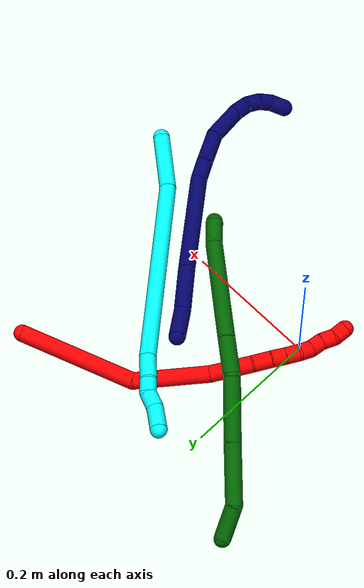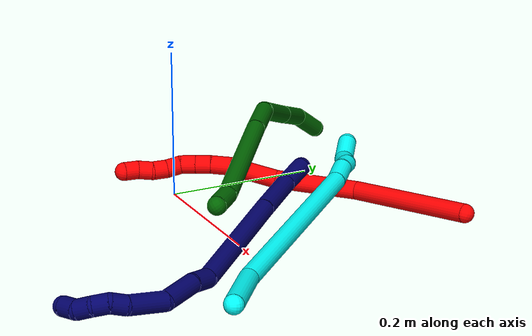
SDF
<sdf version="1.7">
 <world name="default">
  <model name="2">
   <static>0</static>
   <link name="2">
    <collision name="collision-cylinder-e_1_1_4">
     <pose>-0.068611 -0.054743 -0.003369 1.63226 -0.896426 -0.945379</pose>
     <geometry><cylinder><radius>0.0125</radius><length>0.175677</length></cylinder></geometry>
     <surface>
      <friction><ode><mu>1.16</mu><mu2>1.16</mu2><slip1>0</slip1><slip2>0</slip2></ode></friction>
      <contact><ode><kp>1e+06</kp><kd>1</kd><max_vel>0</max_vel><min_depth>0.001</min_depth></ode></contact>
     </surface>
    </collision>
    <visual name="visual-cylinder-e_1_1_4">
     <pose>-0.068611 -0.054743 -0.003369 1.63226 -0.896426 -0.945379</pose>
     <geometry><cylinder><radius>0.0125</radius><length>0.175677</length></cylinder></geometry>
     <material><ambient>1 0 0 1</ambient></material>
    </visual>
    <collision name="collision-cylinder-e_2_4_5">
     <pose>-0.158931 -0.160828 -0.012524 1.68302 -0.39779 -0.443677</pose>
     <geometry><cylinder><radius>0.0125</radius><length>0.112085</length></cylinder></geometry>
     <surface>
      <friction><ode><mu>1.16</mu><mu2>1.16</mu2><slip1>0</slip1><slip2>0</slip2></ode></friction>
      <contact><ode><kp>1e+06</kp><kd>1</kd><max_vel>0</max_vel><min_depth>0.001</min_depth></ode></contact>
     </surface>
    </collision>
    <visual name="visual-cylinder-e_2_4_5">
     <pose>-0.158931 -0.160828 -0.012524 1.68302 -0.39779 -0.443677</pose>
     <geometry><cylinder><radius>0.0125</radius><length>0.112085</length></cylinder></geometry>
     <material><ambient>1 0 0 1</ambient></material>
    </visual>
    <collision name="collision-cylinder-e_3_5_6">
     <pose>-0.189025 -0.243135 -0.017149 1.53334 -0.264241 -0.254631</pose>
     <geometry><cylinder><radius>0.0125</radius><length>0.064202</length></cylinder></geometry>
     <surface>
      <friction><ode><mu>1.16</mu><mu2>1.16</mu2><slip1>0</slip1><slip2>0</slip2></ode></friction>
      <contact><ode><kp>1e+06</kp><kd>1</kd><max_vel>0</max_vel><min_depth>0.001</min_depth></ode></contact>
     </surface>
    </collision>
    <visual name="visual-cylinder-e_3_5_6">
     <pose>-0.189025 -0.243135 -0.017149 1.53334 -0.264241 -0.254631</pose>
     <geometry><cylinder><radius>0.0125</radius><length>0.064202</length></cylinder></geometry>
     <material><ambient>1 0 0 1</ambient></material>
    </visual>
    <collision name="collision-cylinder-e_4_6_7">
     <pose>-0.200538 -0.287116 -0.018028 1.72622 -0.2332 -0.272135</pose>
     <geometry><cylinder><radius>0.0125</radius><length>0.027082</length></cylinder></geometry>
     <surface>
      <friction><ode><mu>1.16</mu><mu2>1.16</mu2><slip1>0</slip1><slip2>0</slip2></ode></friction>
      <contact><ode><kp>1e+06</kp><kd>1</kd><max_vel>0</max_vel><min_depth>0.001</min_depth></ode></contact>
     </surface>
    </collision>
    <visual name="visual-cylinder-e_4_6_7">
     <pose>-0.200538 -0.287116 -0.018028 1.72622 -0.2332 -0.272135</pose>
     <geometry><cylinder><radius>0.0125</radius><length>0.027082</length></cylinder></geometry>
     <material><ambient>1 0 0 1</ambient></material>
    </visual>
    <collision name="collision-cylinder-e_5_7_8">
     <pose>-0.206321 -0.309823 -0.022481 1.81484 -0.259647 -0.331051</pose>
     <geometry><cylinder><radius>0.0125</radius><length>0.020668</length></cylinder></geometry>
     <surface>
      <friction><ode><mu>1.16</mu><mu2>1.16</mu2><slip1>0</slip1><slip2>0</slip2></ode></friction>
      <contact><ode><kp>1e+06</kp><kd>1</kd><max_vel>0</max_vel><min_depth>0.001</min_depth></ode></contact>
     </surface>
    </collision>
    <visual name="visual-cylinder-e_5_7_8">
     <pose>-0.206321 -0.309823 -0.022481 1.81484 -0.259647 -0.331051</pose>
     <geometry><cylinder><radius>0.0125</radius><length>0.020668</length></cylinder></geometry>
     <material><ambient>1 0 0 1</ambient></material>
    </visual>
    <collision name="collision-cylinder-e_6_8_9">
     <pose>-0.211244 -0.329024 -0.027361 1.82463 -0.227109 -0.292707</pose>
     <geometry><cylinder><radius>0.0125</radius><length>0.020166</length></cylinder></geometry>
     <surface>
      <friction><ode><mu>1.16</mu><mu2>1.16</mu2><slip1>0</slip1><slip2>0</slip2></ode></friction>
      <contact><ode><kp>1e+06</kp><kd>1</kd><max_vel>0</max_vel><min_depth>0.001</min_depth></ode></contact>
     </surface>
    </collision>
    <visual name="visual-cylinder-e_6_8_9">
     <pose>-0.211244 -0.329024 -0.027361 1.82463 -0.227109 -0.292707</pose>
     <geometry><cylinder><radius>0.0125</radius><length>0.020166</length></cylinder></geometry>
     <material><ambient>1 0 0 1</ambient></material>
    </visual>
    <collision name="collision-cylinder-e_7_9_10">
     <pose>-0.214813 -0.347104 -0.034895 2.10474 -0.129682 -0.226668</pose>
     <geometry><cylinder><radius>0.0125</radius><length>0.020082</length></cylinder></geometry>
     <surface>
      <friction><ode><mu>1.16</mu><mu2>1.16</mu2><slip1>0</slip1><slip2>0</slip2></ode></friction>
      <contact><ode><kp>1e+06</kp><kd>1</kd><max_vel>0</max_vel><min_depth>0.001</min_depth></ode></contact>
     </surface>
    </collision>
    <visual name="visual-cylinder-e_7_9_10">
     <pose>-0.214813 -0.347104 -0.034895 2.10474 -0.129682 -0.226668</pose>
     <geometry><cylinder><radius>0.0125</radius><length>0.020082</length></cylinder></geometry>
     <material><ambient>1 0 0 1</ambient></material>
    </visual>
    <collision name="collision-cylinder-e_8_10_11">
     <pose>-0.214812 -0.364962 -0.043444 1.92944 0.130285 0.187689</pose>
     <geometry><cylinder><radius>0.0125</radius><length>0.020005</length></cylinder></geometry>
     <surface>
      <friction><ode><mu>1.16</mu><mu2>1.16</mu2><slip1>0</slip1><slip2>0</slip2></ode></friction>
      <contact><ode><kp>1e+06</kp><kd>1</kd><max_vel>0</max_vel><min_depth>0.001</min_depth></ode></contact>
     </surface>
    </collision>
    <visual name="visual-cylinder-e_8_10_11">
     <pose>-0.214812 -0.364962 -0.043444 1.92944 0.130285 0.187689</pose>
     <geometry><cylinder><radius>0.0125</radius><length>0.020005</length></cylinder></geometry>
     <material><ambient>1 0 0 1</ambient></material>
    </visual>
    <collision name="collision-cylinder-e_9_11_12">
     <pose>-0.214966 -0.384011 -0.048605 1.74116 -0.145657 -0.172729</pose>
     <geometry><cylinder><radius>0.0125</radius><length>0.020024</length></cylinder></geometry>
     <surface>
      <friction><ode><mu>1.16</mu><mu2>1.16</mu2><slip1>0</slip1><slip2>0</slip2></ode></friction>
      <contact><ode><kp>1e+06</kp><kd>1</kd><max_vel>0</max_vel><min_depth>0.001</min_depth></ode></contact>
     </surface>
    </collision>
    <visual name="visual-cylinder-e_9_11_12">
     <pose>-0.214966 -0.384011 -0.048605 1.74116 -0.145657 -0.172729</pose>
     <geometry><cylinder><radius>0.0125</radius><length>0.020024</length></cylinder></geometry>
     <material><ambient>1 0 0 1</ambient></material>
    </visual>
    <collision name="collision-cylinder-e_10_12_2">
     <pose>-0.21459 -0.403054 -0.053543 1.90857 0.183802 0.258647</pose>
     <geometry><cylinder><radius>0.0125</radius><length>0.020009</length></cylinder></geometry>
     <surface>
      <friction><ode><mu>1.16</mu><mu2>1.16</mu2><slip1>0</slip1><slip2>0</slip2></ode></friction>
      <contact><ode><kp>1e+06</kp><kd>1</kd><max_vel>0</max_vel><min_depth>0.001</min_depth></ode></contact>
     </surface>
    </collision>
    <visual name="visual-cylinder-e_10_12_2">
     <pose>-0.21459 -0.403054 -0.053543 1.90857 0.183802 0.258647</pose>
     <geometry><cylinder><radius>0.0125</radius><length>0.020009</length></cylinder></geometry>
     <material><ambient>1 0 0 1</ambient></material>
    </visual>
    <collision name="collision-sphere-2">
     <pose>-0.212762 -0.412334 -0.056803 0 -0 0</pose>
     <geometry><sphere><radius>0.0125</radius></sphere></geometry>
     <surface>
      <friction><ode><mu>1.16</mu><mu2>1.16</mu2><slip1>0</slip1><slip2>0</slip2></ode></friction>
      <contact><ode><kp>1e+06</kp><kd>1</kd><max_vel>0</max_vel><min_depth>0.001</min_depth></ode></contact>
     </surface>
    </collision>
    <visual name="visual-sphere-2">
     <pose>-0.212762 -0.412334 -0.056803 0 -0 0</pose>
     <geometry><sphere><radius>0.0125</radius></sphere></geometry>
     <material><ambient>1 0 0 1</ambient></material>
    </visual>
    <collision name="collision-sphere-12">
     <pose>-0.216419 -0.393773 -0.050284 0 -0 0</pose>
     <geometry><sphere><radius>0.0125</radius></sphere></geometry>
     <surface>
      <friction><ode><mu>1.16</mu><mu2>1.16</mu2><slip1>0</slip1><slip2>0</slip2></ode></friction>
      <contact><ode><kp>1e+06</kp><kd>1</kd><max_vel>0</max_vel><min_depth>0.001</min_depth></ode></contact>
     </surface>
    </collision>
    <visual name="visual-sphere-12">
     <pose>-0.216419 -0.393773 -0.050284 0 -0 0</pose>
     <geometry><sphere><radius>0.0125</radius></sphere></geometry>
     <material><ambient>1 0 0 1</ambient></material>
    </visual>
    <collision name="collision-sphere-11">
     <pose>-0.213513 -0.374248 -0.046925 0 -0 0</pose>
     <geometry><sphere><radius>0.0125</radius></sphere></geometry>
     <surface>
      <friction><ode><mu>1.16</mu><mu2>1.16</mu2><slip1>0</slip1><slip2>0</slip2></ode></friction>
      <contact><ode><kp>1e+06</kp><kd>1</kd><max_vel>0</max_vel><min_depth>0.001</min_depth></ode></contact>
     </surface>
    </collision>
    <visual name="visual-sphere-11">
     <pose>-0.213513 -0.374248 -0.046925 0 -0 0</pose>
     <geometry><sphere><radius>0.0125</radius></sphere></geometry>
     <material><ambient>1 0 0 1</ambient></material>
    </visual>
    <collision name="collision-sphere-10">
     <pose>-0.216112 -0.355675 -0.039963 0 -0 0</pose>
     <geometry><sphere><radius>0.0125</radius></sphere></geometry>
     <surface>
      <friction><ode><mu>1.16</mu><mu2>1.16</mu2><slip1>0</slip1><slip2>0</slip2></ode></friction>
      <contact><ode><kp>1e+06</kp><kd>1</kd><max_vel>0</max_vel><min_depth>0.001</min_depth></ode></contact>
     </surface>
    </collision>
    <visual name="visual-sphere-10">
     <pose>-0.216112 -0.355675 -0.039963 0 -0 0</pose>
     <geometry><sphere><radius>0.0125</radius></sphere></geometry>
     <material><ambient>1 0 0 1</ambient></material>
    </visual>
    <collision name="collision-sphere-9">
     <pose>-0.213515 -0.338534 -0.029828 0 -0 0</pose>
     <geometry><sphere><radius>0.0125</radius></sphere></geometry>
     <surface>
      <friction><ode><mu>1.16</mu><mu2>1.16</mu2><slip1>0</slip1><slip2>0</slip2></ode></friction>
      <contact><ode><kp>1e+06</kp><kd>1</kd><max_vel>0</max_vel><min_depth>0.001</min_depth></ode></contact>
     </surface>
    </collision>
    <visual name="visual-sphere-9">
     <pose>-0.213515 -0.338534 -0.029828 0 -0 0</pose>
     <geometry><sphere><radius>0.0125</radius></sphere></geometry>
     <material><ambient>1 0 0 1</ambient></material>
    </visual>
    <collision name="collision-sphere-4">
     <pose>-0.137221 -0.109486 -0.006738 0 -0 0</pose>
     <geometry><sphere><radius>0.0125</radius></sphere></geometry>
     <surface>
      <friction><ode><mu>1.16</mu><mu2>1.16</mu2><slip1>0</slip1><slip2>0</slip2></ode></friction>
      <contact><ode><kp>1e+06</kp><kd>1</kd><max_vel>0</max_vel><min_depth>0.001</min_depth></ode></contact>
     </surface>
    </collision>
    <visual name="visual-sphere-4">
     <pose>-0.137221 -0.109486 -0.006738 0 -0 0</pose>
     <geometry><sphere><radius>0.0125</radius></sphere></geometry>
     <material><ambient>1 0 0 1</ambient></material>
    </visual>
    <collision name="collision-sphere-1">
     <geometry><sphere><radius>0.0125</radius></sphere></geometry>
     <surface>
      <friction><ode><mu>1.16</mu><mu2>1.16</mu2><slip1>0</slip1><slip2>0</slip2></ode></friction>
      <contact><ode><kp>1e+06</kp><kd>1</kd><max_vel>0</max_vel><min_depth>0.001</min_depth></ode></contact>
     </surface>
    </collision>
    <visual name="visual-sphere-1">
     <geometry><sphere><radius>0.0125</radius></sphere></geometry>
     <material><ambient>1 0 0 1</ambient></material>
    </visual>
    <collision name="collision-sphere-8">
     <pose>-0.208974 -0.319515 -0.024894 0 -0 0</pose>
     <geometry><sphere><radius>0.0125</radius></sphere></geometry>
     <surface>
      <friction><ode><mu>1.16</mu><mu2>1.16</mu2><slip1>0</slip1><slip2>0</slip2></ode></friction>
      <contact><ode><kp>1e+06</kp><kd>1</kd><max_vel>0</max_vel><min_depth>0.001</min_depth></ode></contact>
     </surface>
    </collision>
    <visual name="visual-sphere-8">
     <pose>-0.208974 -0.319515 -0.024894 0 -0 0</pose>
     <geometry><sphere><radius>0.0125</radius></sphere></geometry>
     <material><ambient>1 0 0 1</ambient></material>
    </visual>
    <collision name="collision-sphere-5">
     <pose>-0.180641 -0.21217 -0.01831 0 -0 0</pose>
     <geometry><sphere><radius>0.0125</radius></sphere></geometry>
     <surface>
      <friction><ode><mu>1.16</mu><mu2>1.16</mu2><slip1>0</slip1><slip2>0</slip2></ode></friction>
      <contact><ode><kp>1e+06</kp><kd>1</kd><max_vel>0</max_vel><min_depth>0.001</min_depth></ode></contact>
     </surface>
    </collision>
    <visual name="visual-sphere-5">
     <pose>-0.180641 -0.21217 -0.01831 0 -0 0</pose>
     <geometry><sphere><radius>0.0125</radius></sphere></geometry>
     <material><ambient>1 0 0 1</ambient></material>
    </visual>
    <collision name="collision-sphere-6">
     <pose>-0.197409 -0.2741 -0.015989 0 -0 0</pose>
     <geometry><sphere><radius>0.0125</radius></sphere></geometry>
     <surface>
      <friction><ode><mu>1.16</mu><mu2>1.16</mu2><slip1>0</slip1><slip2>0</slip2></ode></friction>
      <contact><ode><kp>1e+06</kp><kd>1</kd><max_vel>0</max_vel><min_depth>0.001</min_depth></ode></contact>
     </surface>
    </collision>
    <visual name="visual-sphere-6">
     <pose>-0.197409 -0.2741 -0.015989 0 -0 0</pose>
     <geometry><sphere><radius>0.0125</radius></sphere></geometry>
     <material><ambient>1 0 0 1</ambient></material>
    </visual>
    <collision name="collision-sphere-7">
     <pose>-0.203668 -0.300131 -0.020068 0 -0 0</pose>
     <geometry><sphere><radius>0.0125</radius></sphere></geometry>
     <surface>
      <friction><ode><mu>1.16</mu><mu2>1.16</mu2><slip1>0</slip1><slip2>0</slip2></ode></friction>
      <contact><ode><kp>1e+06</kp><kd>1</kd><max_vel>0</max_vel><min_depth>0.001</min_depth></ode></contact>
     </surface>
    </collision>
    <visual name="visual-sphere-7">
     <pose>-0.203668 -0.300131 -0.020068 0 -0 0</pose>
     <geometry><sphere><radius>0.0125</radius></sphere></geometry>
     <material><ambient>1 0 0 1</ambient></material>
    </visual>
    <inertial>
     <pose>-0.146335 -0.188186 -0.016431 0 -0 0</pose>
     <mass>0.5</mass>
     <inertia><ixx>-2e-06</ixx><ixy>0</ixy><ixz>0</ixz><iyy>-3.9e-05</iyy><iyz>0</iyz><izz>0.000841</izz></inertia>
    </inertial>
   </link>
   <pose>0.29064 0.27745 0.024914 -0.299995 -0.275425 -0.270124</pose>
  </model>
  <model name="3">
   <static>0</static>
   <link name="3">
    <collision name="collision-cylinder-e_1_1_4">
     <pose>-0.028175 0.011627 -0.029843 -2.77008 -0.721492 2.2173</pose>
     <geometry><cylinder><radius>0.0125</radius><length>0.085314</length></cylinder></geometry>
     <surface>
      <friction><ode><mu>1.16</mu><mu2>1.16</mu2><slip1>0</slip1><slip2>0</slip2></ode></friction>
      <contact><ode><kp>1e+06</kp><kd>1</kd><max_vel>0</max_vel><min_depth>0.001</min_depth></ode></contact>
     </surface>
    </collision>
    <visual name="visual-cylinder-e_1_1_4">
     <pose>-0.028175 0.011627 -0.029843 -2.77008 -0.721492 2.2173</pose>
     <geometry><cylinder><radius>0.0125</radius><length>0.085314</length></cylinder></geometry>
     <material><ambient>0.003922 1 0.996078 1</ambient></material>
    </visual>
    <collision name="collision-cylinder-e_2_4_5">
     <pose>-0.123216 0.072585 -0.179647 -2.75144 -0.475977 1.77455</pose>
     <geometry><cylinder><radius>0.0125</radius><length>0.291859</length></cylinder></geometry>
     <surface>
      <friction><ode><mu>1.16</mu><mu2>1.16</mu2><slip1>0</slip1><slip2>0</slip2></ode></friction>
      <contact><ode><kp>1e+06</kp><kd>1</kd><max_vel>0</max_vel><min_depth>0.001</min_depth></ode></contact>
     </surface>
    </collision>
    <visual name="visual-cylinder-e_2_4_5">
     <pose>-0.123216 0.072585 -0.179647 -2.75144 -0.475977 1.77455</pose>
     <geometry><cylinder><radius>0.0125</radius><length>0.291859</length></cylinder></geometry>
     <material><ambient>0.003922 1 0.996078 1</ambient></material>
    </visual>
    <collision name="collision-cylinder-e_3_5_6">
     <pose>-0.199999 0.130059 -0.313245 -2.6033 -0.558173 1.60894</pose>
     <geometry><cylinder><radius>0.0125</radius><length>0.037448</length></cylinder></geometry>
     <surface>
      <friction><ode><mu>1.16</mu><mu2>1.16</mu2><slip1>0</slip1><slip2>0</slip2></ode></friction>
      <contact><ode><kp>1e+06</kp><kd>1</kd><max_vel>0</max_vel><min_depth>0.001</min_depth></ode></contact>
     </surface>
    </collision>
    <visual name="visual-cylinder-e_3_5_6">
     <pose>-0.199999 0.130059 -0.313245 -2.6033 -0.558173 1.60894</pose>
     <geometry><cylinder><radius>0.0125</radius><length>0.037448</length></cylinder></geometry>
     <material><ambient>0.003922 1 0.996078 1</ambient></material>
    </visual>
    <collision name="collision-cylinder-e_4_6_7">
     <pose>-0.215729 0.1405 -0.335103 -2.86888 -0.597769 2.30369</pose>
     <geometry><cylinder><radius>0.0125</radius><length>0.020657</length></cylinder></geometry>
     <surface>
      <friction><ode><mu>1.16</mu><mu2>1.16</mu2><slip1>0</slip1><slip2>0</slip2></ode></friction>
      <contact><ode><kp>1e+06</kp><kd>1</kd><max_vel>0</max_vel><min_depth>0.001</min_depth></ode></contact>
     </surface>
    </collision>
    <visual name="visual-cylinder-e_4_6_7">
     <pose>-0.215729 0.1405 -0.335103 -2.86888 -0.597769 2.30369</pose>
     <geometry><cylinder><radius>0.0125</radius><length>0.020657</length></cylinder></geometry>
     <material><ambient>0.003922 1 0.996078 1</ambient></material>
    </visual>
    <collision name="collision-cylinder-e_5_7_8">
     <pose>-0.231936 0.146064 -0.348804 -2.60436 -1.02047 2.22739</pose>
     <geometry><cylinder><radius>0.0125</radius><length>0.024391</length></cylinder></geometry>
     <surface>
      <friction><ode><mu>1.16</mu><mu2>1.16</mu2><slip1>0</slip1><slip2>0</slip2></ode></friction>
      <contact><ode><kp>1e+06</kp><kd>1</kd><max_vel>0</max_vel><min_depth>0.001</min_depth></ode></contact>
     </surface>
    </collision>
    <visual name="visual-cylinder-e_5_7_8">
     <pose>-0.231936 0.146064 -0.348804 -2.60436 -1.02047 2.22739</pose>
     <geometry><cylinder><radius>0.0125</radius><length>0.024391</length></cylinder></geometry>
     <material><ambient>0.003922 1 0.996078 1</ambient></material>
    </visual>
    <collision name="collision-cylinder-e_6_8_2">
     <pose>-0.25313 0.160718 -0.366944 -2.40897 -0.565102 1.29564</pose>
     <geometry><cylinder><radius>0.0125</radius><length>0.040331</length></cylinder></geometry>
     <surface>
      <friction><ode><mu>1.16</mu><mu2>1.16</mu2><slip1>0</slip1><slip2>0</slip2></ode></friction>
      <contact><ode><kp>1e+06</kp><kd>1</kd><max_vel>0</max_vel><min_depth>0.001</min_depth></ode></contact>
     </surface>
    </collision>
    <visual name="visual-cylinder-e_6_8_2">
     <pose>-0.25313 0.160718 -0.366944 -2.40897 -0.565102 1.29564</pose>
     <geometry><cylinder><radius>0.0125</radius><length>0.040331</length></cylinder></geometry>
     <material><ambient>0.003922 1 0.996078 1</ambient></material>
    </visual>
    <collision name="collision-sphere-2">
     <pose>-0.263929 0.172109 -0.379605 0 -0 0</pose>
     <geometry><sphere><radius>0.0125</radius></sphere></geometry>
     <surface>
      <friction><ode><mu>1.16</mu><mu2>1.16</mu2><slip1>0</slip1><slip2>0</slip2></ode></friction>
      <contact><ode><kp>1e+06</kp><kd>1</kd><max_vel>0</max_vel><min_depth>0.001</min_depth></ode></contact>
     </surface>
    </collision>
    <visual name="visual-sphere-2">
     <pose>-0.263929 0.172109 -0.379605 0 -0 0</pose>
     <geometry><sphere><radius>0.0125</radius></sphere></geometry>
     <material><ambient>0.003922 1 0.996078 1</ambient></material>
    </visual>
    <collision name="collision-sphere-4">
     <pose>-0.05635 0.023254 -0.059686 0 -0 0</pose>
     <geometry><sphere><radius>0.0125</radius></sphere></geometry>
     <surface>
      <friction><ode><mu>1.16</mu><mu2>1.16</mu2><slip1>0</slip1><slip2>0</slip2></ode></friction>
      <contact><ode><kp>1e+06</kp><kd>1</kd><max_vel>0</max_vel><min_depth>0.001</min_depth></ode></contact>
     </surface>
    </collision>
    <visual name="visual-sphere-4">
     <pose>-0.05635 0.023254 -0.059686 0 -0 0</pose>
     <geometry><sphere><radius>0.0125</radius></sphere></geometry>
     <material><ambient>0.003922 1 0.996078 1</ambient></material>
    </visual>
    <collision name="collision-sphere-1">
     <geometry><sphere><radius>0.0125</radius></sphere></geometry>
     <surface>
      <friction><ode><mu>1.16</mu><mu2>1.16</mu2><slip1>0</slip1><slip2>0</slip2></ode></friction>
      <contact><ode><kp>1e+06</kp><kd>1</kd><max_vel>0</max_vel><min_depth>0.001</min_depth></ode></contact>
     </surface>
    </collision>
    <visual name="visual-sphere-1">
     <geometry><sphere><radius>0.0125</radius></sphere></geometry>
     <material><ambient>0.003922 1 0.996078 1</ambient></material>
    </visual>
    <collision name="collision-sphere-8">
     <pose>-0.242332 0.149328 -0.354284 0 -0 0</pose>
     <geometry><sphere><radius>0.0125</radius></sphere></geometry>
     <surface>
      <friction><ode><mu>1.16</mu><mu2>1.16</mu2><slip1>0</slip1><slip2>0</slip2></ode></friction>
      <contact><ode><kp>1e+06</kp><kd>1</kd><max_vel>0</max_vel><min_depth>0.001</min_depth></ode></contact>
     </surface>
    </collision>
    <visual name="visual-sphere-8">
     <pose>-0.242332 0.149328 -0.354284 0 -0 0</pose>
     <geometry><sphere><radius>0.0125</radius></sphere></geometry>
     <material><ambient>0.003922 1 0.996078 1</ambient></material>
    </visual>
    <collision name="collision-sphere-5">
     <pose>-0.190082 0.121917 -0.299609 0 -0 0</pose>
     <geometry><sphere><radius>0.0125</radius></sphere></geometry>
     <surface>
      <friction><ode><mu>1.16</mu><mu2>1.16</mu2><slip1>0</slip1><slip2>0</slip2></ode></friction>
      <contact><ode><kp>1e+06</kp><kd>1</kd><max_vel>0</max_vel><min_depth>0.001</min_depth></ode></contact>
     </surface>
    </collision>
    <visual name="visual-sphere-5">
     <pose>-0.190082 0.121917 -0.299609 0 -0 0</pose>
     <geometry><sphere><radius>0.0125</radius></sphere></geometry>
     <material><ambient>0.003922 1 0.996078 1</ambient></material>
    </visual>
    <collision name="collision-sphere-6">
     <pose>-0.209916 0.138201 -0.326881 0 -0 0</pose>
     <geometry><sphere><radius>0.0125</radius></sphere></geometry>
     <surface>
      <friction><ode><mu>1.16</mu><mu2>1.16</mu2><slip1>0</slip1><slip2>0</slip2></ode></friction>
      <contact><ode><kp>1e+06</kp><kd>1</kd><max_vel>0</max_vel><min_depth>0.001</min_depth></ode></contact>
     </surface>
    </collision>
    <visual name="visual-sphere-6">
     <pose>-0.209916 0.138201 -0.326881 0 -0 0</pose>
     <geometry><sphere><radius>0.0125</radius></sphere></geometry>
     <material><ambient>0.003922 1 0.996078 1</ambient></material>
    </visual>
    <collision name="collision-sphere-7">
     <pose>-0.221541 0.1428 -0.343325 0 -0 0</pose>
     <geometry><sphere><radius>0.0125</radius></sphere></geometry>
     <surface>
      <friction><ode><mu>1.16</mu><mu2>1.16</mu2><slip1>0</slip1><slip2>0</slip2></ode></friction>
      <contact><ode><kp>1e+06</kp><kd>1</kd><max_vel>0</max_vel><min_depth>0.001</min_depth></ode></contact>
     </surface>
    </collision>
    <visual name="visual-sphere-7">
     <pose>-0.221541 0.1428 -0.343325 0 -0 0</pose>
     <geometry><sphere><radius>0.0125</radius></sphere></geometry>
     <material><ambient>0.003922 1 0.996078 1</ambient></material>
    </visual>
    <inertial>
     <pose>-0.132355 0.079988 -0.193875 0 -0 0</pose>
     <mass>0.5</mass>
     <inertia>
      <ixx>0.001439</ixx>
      <ixy>0</ixy>
      <ixz>0</ixz>
      <iyy>0.002665</iyy>
      <iyz>0</iyz>
      <izz>0.000244</izz>
     </inertia>
    </inertial>
   </link>
   <pose>0.387664 -0.098062 0.016519 1.48343 -0.381136 0.146487</pose>
  </model>
  <model name="6">
   <static>0</static>
   <link name="6">
    <collision name="collision-cylinder-e_1_1_4">
     <pose>-0.012023 0.013907 0.004849 -1.23533 -0.684599 0.495845</pose>
     <geometry><cylinder><radius>0.0125</radius><length>0.038024</length></cylinder></geometry>
     <surface>
      <friction><ode><mu>1.16</mu><mu2>1.16</mu2><slip1>0</slip1><slip2>0</slip2></ode></friction>
      <contact><ode><kp>1e+06</kp><kd>1</kd><max_vel>0</max_vel><min_depth>0.001</min_depth></ode></contact>
     </surface>
    </collision>
    <visual name="visual-cylinder-e_1_1_4">
     <pose>-0.012023 0.013907 0.004849 -1.23533 -0.684599 0.495845</pose>
     <geometry><cylinder><radius>0.0125</radius><length>0.038024</length></cylinder></geometry>
     <material><ambient>0 0.392157 0.003922 1</ambient></material>
    </visual>
    <collision name="collision-cylinder-e_2_4_5">
     <pose>-0.090062 0.077357 0.031796 -1.15124 -0.882946 0.595128</pose>
     <geometry><cylinder><radius>0.0125</radius><length>0.170893</length></cylinder></geometry>
     <surface>
      <friction><ode><mu>1.16</mu><mu2>1.16</mu2><slip1>0</slip1><slip2>0</slip2></ode></friction>
      <contact><ode><kp>1e+06</kp><kd>1</kd><max_vel>0</max_vel><min_depth>0.001</min_depth></ode></contact>
     </surface>
    </collision>
    <visual name="visual-cylinder-e_2_4_5">
     <pose>-0.090062 0.077357 0.031796 -1.15124 -0.882946 0.595128</pose>
     <geometry><cylinder><radius>0.0125</radius><length>0.170893</length></cylinder></geometry>
     <material><ambient>0 0.392157 0.003922 1</ambient></material>
    </visual>
    <collision name="collision-cylinder-e_3_5_6">
     <pose>-0.178151 0.14598 0.059802 -1.27054 -0.835266 0.632315</pose>
     <geometry><cylinder><radius>0.0125</radius><length>0.059533</length></cylinder></geometry>
     <surface>
      <friction><ode><mu>1.16</mu><mu2>1.16</mu2><slip1>0</slip1><slip2>0</slip2></ode></friction>
      <contact><ode><kp>1e+06</kp><kd>1</kd><max_vel>0</max_vel><min_depth>0.001</min_depth></ode></contact>
     </surface>
    </collision>
    <visual name="visual-cylinder-e_3_5_6">
     <pose>-0.178151 0.14598 0.059802 -1.27054 -0.835266 0.632315</pose>
     <geometry><cylinder><radius>0.0125</radius><length>0.059533</length></cylinder></geometry>
     <material><ambient>0 0.392157 0.003922 1</ambient></material>
    </visual>
    <collision name="collision-cylinder-e_4_6_7">
     <pose>-0.219246 0.207457 0.066484 -1.55252 -0.421719 0.4143</pose>
     <geometry><cylinder><radius>0.0125</radius><length>0.092956</length></cylinder></geometry>
     <surface>
      <friction><ode><mu>1.16</mu><mu2>1.16</mu2><slip1>0</slip1><slip2>0</slip2></ode></friction>
      <contact><ode><kp>1e+06</kp><kd>1</kd><max_vel>0</max_vel><min_depth>0.001</min_depth></ode></contact>
     </surface>
    </collision>
    <visual name="visual-cylinder-e_4_6_7">
     <pose>-0.219246 0.207457 0.066484 -1.55252 -0.421719 0.4143</pose>
     <geometry><cylinder><radius>0.0125</radius><length>0.092956</length></cylinder></geometry>
     <material><ambient>0 0.392157 0.003922 1</ambient></material>
    </visual>
    <collision name="collision-cylinder-e_5_7_8">
     <pose>-0.257066 0.28956 0.067991 -1.55235 -0.442067 0.434239</pose>
     <geometry><cylinder><radius>0.0125</radius><length>0.087868</length></cylinder></geometry>
     <surface>
      <friction><ode><mu>1.16</mu><mu2>1.16</mu2><slip1>0</slip1><slip2>0</slip2></ode></friction>
      <contact><ode><kp>1e+06</kp><kd>1</kd><max_vel>0</max_vel><min_depth>0.001</min_depth></ode></contact>
     </surface>
    </collision>
    <visual name="visual-cylinder-e_5_7_8">
     <pose>-0.257066 0.28956 0.067991 -1.55235 -0.442067 0.434239</pose>
     <geometry><cylinder><radius>0.0125</radius><length>0.087868</length></cylinder></geometry>
     <material><ambient>0 0.392157 0.003922 1</ambient></material>
    </visual>
    <collision name="collision-cylinder-e_6_8_2">
     <pose>-0.275825 0.35446 0.071629 -1.45599 0.00145 -0.001292</pose>
     <geometry><cylinder><radius>0.0125</radius><length>0.050726</length></cylinder></geometry>
     <surface>
      <friction><ode><mu>1.16</mu><mu2>1.16</mu2><slip1>0</slip1><slip2>0</slip2></ode></friction>
      <contact><ode><kp>1e+06</kp><kd>1</kd><max_vel>0</max_vel><min_depth>0.001</min_depth></ode></contact>
     </surface>
    </collision>
    <visual name="visual-cylinder-e_6_8_2">
     <pose>-0.275825 0.35446 0.071629 -1.45599 0.00145 -0.001292</pose>
     <geometry><cylinder><radius>0.0125</radius><length>0.050726</length></cylinder></geometry>
     <material><ambient>0 0.392157 0.003922 1</ambient></material>
    </visual>
    <collision name="collision-sphere-2">
     <pose>-0.275788 0.379656 0.074535 0 -0 0</pose>
     <geometry><sphere><radius>0.0125</radius></sphere></geometry>
     <surface>
      <friction><ode><mu>1.16</mu><mu2>1.16</mu2><slip1>0</slip1><slip2>0</slip2></ode></friction>
      <contact><ode><kp>1e+06</kp><kd>1</kd><max_vel>0</max_vel><min_depth>0.001</min_depth></ode></contact>
     </surface>
    </collision>
    <visual name="visual-sphere-2">
     <pose>-0.275788 0.379656 0.074535 0 -0 0</pose>
     <geometry><sphere><radius>0.0125</radius></sphere></geometry>
     <material><ambient>0 0.392157 0.003922 1</ambient></material>
    </visual>
    <collision name="collision-sphere-4">
     <pose>-0.024045 0.027814 0.009697 0 -0 0</pose>
     <geometry><sphere><radius>0.0125</radius></sphere></geometry>
     <surface>
      <friction><ode><mu>1.16</mu><mu2>1.16</mu2><slip1>0</slip1><slip2>0</slip2></ode></friction>
      <contact><ode><kp>1e+06</kp><kd>1</kd><max_vel>0</max_vel><min_depth>0.001</min_depth></ode></contact>
     </surface>
    </collision>
    <visual name="visual-sphere-4">
     <pose>-0.024045 0.027814 0.009697 0 -0 0</pose>
     <geometry><sphere><radius>0.0125</radius></sphere></geometry>
     <material><ambient>0 0.392157 0.003922 1</ambient></material>
    </visual>
    <collision name="collision-sphere-1">
     <geometry><sphere><radius>0.0125</radius></sphere></geometry>
     <surface>
      <friction><ode><mu>1.16</mu><mu2>1.16</mu2><slip1>0</slip1><slip2>0</slip2></ode></friction>
      <contact><ode><kp>1e+06</kp><kd>1</kd><max_vel>0</max_vel><min_depth>0.001</min_depth></ode></contact>
     </surface>
    </collision>
    <visual name="visual-sphere-1">
     <geometry><sphere><radius>0.0125</radius></sphere></geometry>
     <material><ambient>0 0.392157 0.003922 1</ambient></material>
    </visual>
    <collision name="collision-sphere-8">
     <pose>-0.275862 0.329264 0.068724 0 -0 0</pose>
     <geometry><sphere><radius>0.0125</radius></sphere></geometry>
     <surface>
      <friction><ode><mu>1.16</mu><mu2>1.16</mu2><slip1>0</slip1><slip2>0</slip2></ode></friction>
      <contact><ode><kp>1e+06</kp><kd>1</kd><max_vel>0</max_vel><min_depth>0.001</min_depth></ode></contact>
     </surface>
    </collision>
    <visual name="visual-sphere-8">
     <pose>-0.275862 0.329264 0.068724 0 -0 0</pose>
     <geometry><sphere><radius>0.0125</radius></sphere></geometry>
     <material><ambient>0 0.392157 0.003922 1</ambient></material>
    </visual>
    <collision name="collision-sphere-5">
     <pose>-0.15608 0.126901 0.053894 0 -0 0</pose>
     <geometry><sphere><radius>0.0125</radius></sphere></geometry>
     <surface>
      <friction><ode><mu>1.16</mu><mu2>1.16</mu2><slip1>0</slip1><slip2>0</slip2></ode></friction>
      <contact><ode><kp>1e+06</kp><kd>1</kd><max_vel>0</max_vel><min_depth>0.001</min_depth></ode></contact>
     </surface>
    </collision>
    <visual name="visual-sphere-5">
     <pose>-0.15608 0.126901 0.053894 0 -0 0</pose>
     <geometry><sphere><radius>0.0125</radius></sphere></geometry>
     <material><ambient>0 0.392157 0.003922 1</ambient></material>
    </visual>
    <collision name="collision-sphere-6">
     <pose>-0.200222 0.165059 0.065709 0 -0 0</pose>
     <geometry><sphere><radius>0.0125</radius></sphere></geometry>
     <surface>
      <friction><ode><mu>1.16</mu><mu2>1.16</mu2><slip1>0</slip1><slip2>0</slip2></ode></friction>
      <contact><ode><kp>1e+06</kp><kd>1</kd><max_vel>0</max_vel><min_depth>0.001</min_depth></ode></contact>
     </surface>
    </collision>
    <visual name="visual-sphere-6">
     <pose>-0.200222 0.165059 0.065709 0 -0 0</pose>
     <geometry><sphere><radius>0.0125</radius></sphere></geometry>
     <material><ambient>0 0.392157 0.003922 1</ambient></material>
    </visual>
    <collision name="collision-sphere-7">
     <pose>-0.238271 0.249856 0.067259 0 -0 0</pose>
     <geometry><sphere><radius>0.0125</radius></sphere></geometry>
     <surface>
      <friction><ode><mu>1.16</mu><mu2>1.16</mu2><slip1>0</slip1><slip2>0</slip2></ode></friction>
      <contact><ode><kp>1e+06</kp><kd>1</kd><max_vel>0</max_vel><min_depth>0.001</min_depth></ode></contact>
     </surface>
    </collision>
    <visual name="visual-sphere-7">
     <pose>-0.238271 0.249856 0.067259 0 -0 0</pose>
     <geometry><sphere><radius>0.0125</radius></sphere></geometry>
     <material><ambient>0 0.392157 0.003922 1</ambient></material>
    </visual>
    <inertial>
     <pose>-0.166827 0.170294 0.049932 0 -0 0</pose>
     <mass>0.5</mass>
     <inertia>
      <ixx>0.000546</ixx>
      <ixy>0</ixy>
      <ixz>0</ixz>
      <iyy>0.000591</iyy>
      <iyz>0</iyz>
      <izz>1.2e-05</izz>
     </inertia>
    </inertial>
   </link>
   <pose>0.211128 -0.035233 0.064143 -0.853981 0.561409 -0.051961</pose>
  </model>
  <model name="7">
   <static>0</static>
   <link name="7">
    <collision name="collision-cylinder-e_1_1_4">
     <pose>0.001993 -0.004307 0.022806 0.186636 0.085655 0.008021</pose>
     <geometry><cylinder><radius>0.0125</radius><length>0.04659</length></cylinder></geometry>
     <surface>
      <friction><ode><mu>1.16</mu><mu2>1.16</mu2><slip1>0</slip1><slip2>0</slip2></ode></friction>
      <contact><ode><kp>1e+06</kp><kd>1</kd><max_vel>0</max_vel><min_depth>0.001</min_depth></ode></contact>
     </surface>
    </collision>
    <visual name="visual-cylinder-e_1_1_4">
     <pose>0.001993 -0.004307 0.022806 0.186636 0.085655 0.008021</pose>
     <geometry><cylinder><radius>0.0125</radius><length>0.04659</length></cylinder></geometry>
     <material><ambient>0.003922 0 0.403922 1</ambient></material>
    </visual>
    <collision name="collision-cylinder-e_2_4_5">
     <pose>0.00539 -0.012356 0.081336 0.104402 0.039067 0.002041</pose>
     <geometry><cylinder><radius>0.0125</radius><length>0.071892</length></cylinder></geometry>
     <surface>
      <friction><ode><mu>1.16</mu><mu2>1.16</mu2><slip1>0</slip1><slip2>0</slip2></ode></friction>
      <contact><ode><kp>1e+06</kp><kd>1</kd><max_vel>0</max_vel><min_depth>0.001</min_depth></ode></contact>
     </surface>
    </collision>
    <visual name="visual-cylinder-e_2_4_5">
     <pose>0.00539 -0.012356 0.081336 0.104402 0.039067 0.002041</pose>
     <geometry><cylinder><radius>0.0125</radius><length>0.071892</length></cylinder></geometry>
     <material><ambient>0.003922 0 0.403922 1</ambient></material>
    </visual>
    <collision name="collision-cylinder-e_3_5_6">
     <pose>0.014669 -0.027235 0.200566 0.132561 0.093207 0.006191</pose>
     <geometry><cylinder><radius>0.0125</radius><length>0.169227</length></cylinder></geometry>
     <surface>
      <friction><ode><mu>1.16</mu><mu2>1.16</mu2><slip1>0</slip1><slip2>0</slip2></ode></friction>
      <contact><ode><kp>1e+06</kp><kd>1</kd><max_vel>0</max_vel><min_depth>0.001</min_depth></ode></contact>
     </surface>
    </collision>
    <visual name="visual-cylinder-e_3_5_6">
     <pose>0.014669 -0.027235 0.200566 0.132561 0.093207 0.006191</pose>
     <geometry><cylinder><radius>0.0125</radius><length>0.169227</length></cylinder></geometry>
     <material><ambient>0.003922 0 0.403922 1</ambient></material>
    </visual>
    <collision name="collision-cylinder-e_4_6_7">
     <pose>0.019084 -0.042854 0.29797 0.312101 -0.232651 -0.036765</pose>
     <geometry><cylinder><radius>0.0125</radius><length>0.030014</length></cylinder></geometry>
     <surface>
      <friction><ode><mu>1.16</mu><mu2>1.16</mu2><slip1>0</slip1><slip2>0</slip2></ode></friction>
      <contact><ode><kp>1e+06</kp><kd>1</kd><max_vel>0</max_vel><min_depth>0.001</min_depth></ode></contact>
     </surface>
    </collision>
    <visual name="visual-cylinder-e_4_6_7">
     <pose>0.019084 -0.042854 0.29797 0.312101 -0.232651 -0.036765</pose>
     <geometry><cylinder><radius>0.0125</radius><length>0.030014</length></cylinder></geometry>
     <material><ambient>0.003922 0 0.403922 1</ambient></material>
    </visual>
    <collision name="collision-cylinder-e_5_7_8">
     <pose>0.015274 -0.055277 0.336129 0.316249 -0.013721 -0.002188</pose>
     <geometry><cylinder><radius>0.0125</radius><length>0.05106</length></cylinder></geometry>
     <surface>
      <friction><ode><mu>1.16</mu><mu2>1.16</mu2><slip1>0</slip1><slip2>0</slip2></ode></friction>
      <contact><ode><kp>1e+06</kp><kd>1</kd><max_vel>0</max_vel><min_depth>0.001</min_depth></ode></contact>
     </surface>
    </collision>
    <visual name="visual-cylinder-e_5_7_8">
     <pose>0.015274 -0.055277 0.336129 0.316249 -0.013721 -0.002188</pose>
     <geometry><cylinder><radius>0.0125</radius><length>0.05106</length></cylinder></geometry>
     <material><ambient>0.003922 0 0.403922 1</ambient></material>
    </visual>
    <collision name="collision-cylinder-e_6_8_9">
     <pose>0.009296 -0.079656 0.378221 0.744855 -0.227984 -0.089392</pose>
     <geometry><cylinder><radius>0.0125</radius><length>0.049794</length></cylinder></geometry>
     <surface>
      <friction><ode><mu>1.16</mu><mu2>1.16</mu2><slip1>0</slip1><slip2>0</slip2></ode></friction>
      <contact><ode><kp>1e+06</kp><kd>1</kd><max_vel>0</max_vel><min_depth>0.001</min_depth></ode></contact>
     </surface>
    </collision>
    <visual name="visual-cylinder-e_6_8_9">
     <pose>0.009296 -0.079656 0.378221 0.744855 -0.227984 -0.089392</pose>
     <geometry><cylinder><radius>0.0125</radius><length>0.049794</length></cylinder></geometry>
     <material><ambient>0.003922 0 0.403922 1</ambient></material>
    </visual>
    <collision name="collision-cylinder-e_7_9_10">
     <pose>0.000217 -0.104291 0.400812 1.04444 -0.349307 -0.202407</pose>
     <geometry><cylinder><radius>0.0125</radius><length>0.020172</length></cylinder></geometry>
     <surface>
      <friction><ode><mu>1.16</mu><mu2>1.16</mu2><slip1>0</slip1><slip2>0</slip2></ode></friction>
      <contact><ode><kp>1e+06</kp><kd>1</kd><max_vel>0</max_vel><min_depth>0.001</min_depth></ode></contact>
     </surface>
    </collision>
    <visual name="visual-cylinder-e_7_9_10">
     <pose>0.000217 -0.104291 0.400812 1.04444 -0.349307 -0.202407</pose>
     <geometry><cylinder><radius>0.0125</radius><length>0.020172</length></cylinder></geometry>
     <material><ambient>0.003922 0 0.403922 1</ambient></material>
    </visual>
    <collision name="collision-cylinder-e_8_10_11">
     <pose>-0.002501 -0.121786 0.409235 1.19582 0.073273 0.049916</pose>
     <geometry><cylinder><radius>0.0125</radius><length>0.020046</length></cylinder></geometry>
     <surface>
      <friction><ode><mu>1.16</mu><mu2>1.16</mu2><slip1>0</slip1><slip2>0</slip2></ode></friction>
      <contact><ode><kp>1e+06</kp><kd>1</kd><max_vel>0</max_vel><min_depth>0.001</min_depth></ode></contact>
     </surface>
    </collision>
    <visual name="visual-cylinder-e_8_10_11">
     <pose>-0.002501 -0.121786 0.409235 1.19582 0.073273 0.049916</pose>
     <geometry><cylinder><radius>0.0125</radius><length>0.020046</length></cylinder></geometry>
     <material><ambient>0.003922 0 0.403922 1</ambient></material>
    </visual>
    <collision name="collision-cylinder-e_9_11_12">
     <pose>0.000649 -0.140771 0.413685 1.4895 0.243741 0.224857</pose>
     <geometry><cylinder><radius>0.0125</radius><length>0.020022</length></cylinder></geometry>
     <surface>
      <friction><ode><mu>1.16</mu><mu2>1.16</mu2><slip1>0</slip1><slip2>0</slip2></ode></friction>
      <contact><ode><kp>1e+06</kp><kd>1</kd><max_vel>0</max_vel><min_depth>0.001</min_depth></ode></contact>
     </surface>
    </collision>
    <visual name="visual-cylinder-e_9_11_12">
     <pose>0.000649 -0.140771 0.413685 1.4895 0.243741 0.224857</pose>
     <geometry><cylinder><radius>0.0125</radius><length>0.020022</length></cylinder></geometry>
     <material><ambient>0.003922 0 0.403922 1</ambient></material>
    </visual>
    <collision name="collision-cylinder-e_10_12_2">
     <pose>0.003489 -0.160238 0.410439 1.96189 0.040012 0.059768</pose>
     <geometry><cylinder><radius>0.0125</radius><length>0.021183</length></cylinder></geometry>
     <surface>
      <friction><ode><mu>1.16</mu><mu2>1.16</mu2><slip1>0</slip1><slip2>0</slip2></ode></friction>
      <contact><ode><kp>1e+06</kp><kd>1</kd><max_vel>0</max_vel><min_depth>0.001</min_depth></ode></contact>
     </surface>
    </collision>
    <visual name="visual-cylinder-e_10_12_2">
     <pose>0.003489 -0.160238 0.410439 1.96189 0.040012 0.059768</pose>
     <geometry><cylinder><radius>0.0125</radius><length>0.021183</length></cylinder></geometry>
     <material><ambient>0.003922 0 0.403922 1</ambient></material>
    </visual>
    <collision name="collision-sphere-2">
     <pose>0.003912 -0.170022 0.406405 0 -0 0</pose>
     <geometry><sphere><radius>0.0125</radius></sphere></geometry>
     <surface>
      <friction><ode><mu>1.16</mu><mu2>1.16</mu2><slip1>0</slip1><slip2>0</slip2></ode></friction>
      <contact><ode><kp>1e+06</kp><kd>1</kd><max_vel>0</max_vel><min_depth>0.001</min_depth></ode></contact>
     </surface>
    </collision>
    <visual name="visual-sphere-2">
     <pose>0.003912 -0.170022 0.406405 0 -0 0</pose>
     <geometry><sphere><radius>0.0125</radius></sphere></geometry>
     <material><ambient>0.003922 0 0.403922 1</ambient></material>
    </visual>
    <collision name="collision-sphere-12">
     <pose>0.003065 -0.150454 0.414474 0 -0 0</pose>
     <geometry><sphere><radius>0.0125</radius></sphere></geometry>
     <surface>
      <friction><ode><mu>1.16</mu><mu2>1.16</mu2><slip1>0</slip1><slip2>0</slip2></ode></friction>
      <contact><ode><kp>1e+06</kp><kd>1</kd><max_vel>0</max_vel><min_depth>0.001</min_depth></ode></contact>
     </surface>
    </collision>
    <visual name="visual-sphere-12">
     <pose>0.003065 -0.150454 0.414474 0 -0 0</pose>
     <geometry><sphere><radius>0.0125</radius></sphere></geometry>
     <material><ambient>0.003922 0 0.403922 1</ambient></material>
    </visual>
    <collision name="collision-sphere-11">
     <pose>-0.001767 -0.131088 0.412896 0 -0 0</pose>
     <geometry><sphere><radius>0.0125</radius></sphere></geometry>
     <surface>
      <friction><ode><mu>1.16</mu><mu2>1.16</mu2><slip1>0</slip1><slip2>0</slip2></ode></friction>
      <contact><ode><kp>1e+06</kp><kd>1</kd><max_vel>0</max_vel><min_depth>0.001</min_depth></ode></contact>
     </surface>
    </collision>
    <visual name="visual-sphere-11">
     <pose>-0.001767 -0.131088 0.412896 0 -0 0</pose>
     <geometry><sphere><radius>0.0125</radius></sphere></geometry>
     <material><ambient>0.003922 0 0.403922 1</ambient></material>
    </visual>
    <collision name="collision-sphere-10">
     <pose>-0.003235 -0.112485 0.405574 0 -0 0</pose>
     <geometry><sphere><radius>0.0125</radius></sphere></geometry>
     <surface>
      <friction><ode><mu>1.16</mu><mu2>1.16</mu2><slip1>0</slip1><slip2>0</slip2></ode></friction>
      <contact><ode><kp>1e+06</kp><kd>1</kd><max_vel>0</max_vel><min_depth>0.001</min_depth></ode></contact>
     </surface>
    </collision>
    <visual name="visual-sphere-10">
     <pose>-0.003235 -0.112485 0.405574 0 -0 0</pose>
     <geometry><sphere><radius>0.0125</radius></sphere></geometry>
     <material><ambient>0.003922 0 0.403922 1</ambient></material>
    </visual>
    <collision name="collision-sphere-9">
     <pose>0.003669 -0.096096 0.396051 0 -0 0</pose>
     <geometry><sphere><radius>0.0125</radius></sphere></geometry>
     <surface>
      <friction><ode><mu>1.16</mu><mu2>1.16</mu2><slip1>0</slip1><slip2>0</slip2></ode></friction>
      <contact><ode><kp>1e+06</kp><kd>1</kd><max_vel>0</max_vel><min_depth>0.001</min_depth></ode></contact>
     </surface>
    </collision>
    <visual name="visual-sphere-9">
     <pose>0.003669 -0.096096 0.396051 0 -0 0</pose>
     <geometry><sphere><radius>0.0125</radius></sphere></geometry>
     <material><ambient>0.003922 0 0.403922 1</ambient></material>
    </visual>
    <collision name="collision-sphere-4">
     <pose>0.003986 -0.008613 0.045613 0 -0 0</pose>
     <geometry><sphere><radius>0.0125</radius></sphere></geometry>
     <surface>
      <friction><ode><mu>1.16</mu><mu2>1.16</mu2><slip1>0</slip1><slip2>0</slip2></ode></friction>
      <contact><ode><kp>1e+06</kp><kd>1</kd><max_vel>0</max_vel><min_depth>0.001</min_depth></ode></contact>
     </surface>
    </collision>
    <visual name="visual-sphere-4">
     <pose>0.003986 -0.008613 0.045613 0 -0 0</pose>
     <geometry><sphere><radius>0.0125</radius></sphere></geometry>
     <material><ambient>0.003922 0 0.403922 1</ambient></material>
    </visual>
    <collision name="collision-sphere-1">
     <geometry><sphere><radius>0.0125</radius></sphere></geometry>
     <surface>
      <friction><ode><mu>1.16</mu><mu2>1.16</mu2><slip1>0</slip1><slip2>0</slip2></ode></friction>
      <contact><ode><kp>1e+06</kp><kd>1</kd><max_vel>0</max_vel><min_depth>0.001</min_depth></ode></contact>
     </surface>
    </collision>
    <visual name="visual-sphere-1">
     <geometry><sphere><radius>0.0125</radius></sphere></geometry>
     <material><ambient>0.003922 0 0.403922 1</ambient></material>
    </visual>
    <collision name="collision-sphere-8">
     <pose>0.014924 -0.063216 0.36039 0 -0 0</pose>
     <geometry><sphere><radius>0.0125</radius></sphere></geometry>
     <surface>
      <friction><ode><mu>1.16</mu><mu2>1.16</mu2><slip1>0</slip1><slip2>0</slip2></ode></friction>
      <contact><ode><kp>1e+06</kp><kd>1</kd><max_vel>0</max_vel><min_depth>0.001</min_depth></ode></contact>
     </surface>
    </collision>
    <visual name="visual-sphere-8">
     <pose>0.014924 -0.063216 0.36039 0 -0 0</pose>
     <geometry><sphere><radius>0.0125</radius></sphere></geometry>
     <material><ambient>0.003922 0 0.403922 1</ambient></material>
    </visual>
    <collision name="collision-sphere-5">
     <pose>0.006794 -0.0161 0.117059 0 -0 0</pose>
     <geometry><sphere><radius>0.0125</radius></sphere></geometry>
     <surface>
      <friction><ode><mu>1.16</mu><mu2>1.16</mu2><slip1>0</slip1><slip2>0</slip2></ode></friction>
      <contact><ode><kp>1e+06</kp><kd>1</kd><max_vel>0</max_vel><min_depth>0.001</min_depth></ode></contact>
     </surface>
    </collision>
    <visual name="visual-sphere-5">
     <pose>0.006794 -0.0161 0.117059 0 -0 0</pose>
     <geometry><sphere><radius>0.0125</radius></sphere></geometry>
     <material><ambient>0.003922 0 0.403922 1</ambient></material>
    </visual>
    <collision name="collision-sphere-6">
     <pose>0.022544 -0.03837 0.284073 0 -0 0</pose>
     <geometry><sphere><radius>0.0125</radius></sphere></geometry>
     <surface>
      <friction><ode><mu>1.16</mu><mu2>1.16</mu2><slip1>0</slip1><slip2>0</slip2></ode></friction>
      <contact><ode><kp>1e+06</kp><kd>1</kd><max_vel>0</max_vel><min_depth>0.001</min_depth></ode></contact>
     </surface>
    </collision>
    <visual name="visual-sphere-6">
     <pose>0.022544 -0.03837 0.284073 0 -0 0</pose>
     <geometry><sphere><radius>0.0125</radius></sphere></geometry>
     <material><ambient>0.003922 0 0.403922 1</ambient></material>
    </visual>
    <collision name="collision-sphere-7">
     <pose>0.015624 -0.047337 0.311867 0 -0 0</pose>
     <geometry><sphere><radius>0.0125</radius></sphere></geometry>
     <surface>
      <friction><ode><mu>1.16</mu><mu2>1.16</mu2><slip1>0</slip1><slip2>0</slip2></ode></friction>
      <contact><ode><kp>1e+06</kp><kd>1</kd><max_vel>0</max_vel><min_depth>0.001</min_depth></ode></contact>
     </surface>
    </collision>
    <visual name="visual-sphere-7">
     <pose>0.015624 -0.047337 0.311867 0 -0 0</pose>
     <geometry><sphere><radius>0.0125</radius></sphere></geometry>
     <material><ambient>0.003922 0 0.403922 1</ambient></material>
    </visual>
    <inertial>
     <pose>0.009639 -0.049062 0.238112 0 -0 0</pose>
     <mass>0.5</mass>
     <inertia>
      <ixx>0.000489</ixx>
      <ixy>0</ixy>
      <ixz>0</ixz>
      <iyy>0.000465</iyy>
      <iyz>0</iyz>
      <izz>7.3e-05</izz>
     </inertia>
    </inertial>
   </link>
   <pose>0.11887 0.131312 0.057054 2.35371 1.47067 1.5918</pose>
  </model>
 </world>
</sdf>
